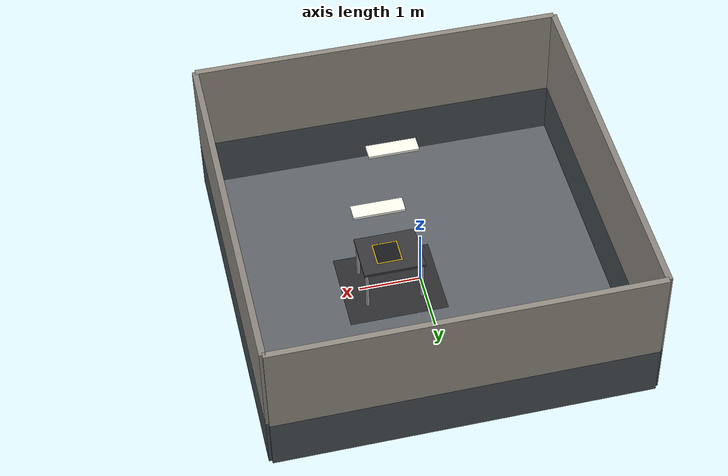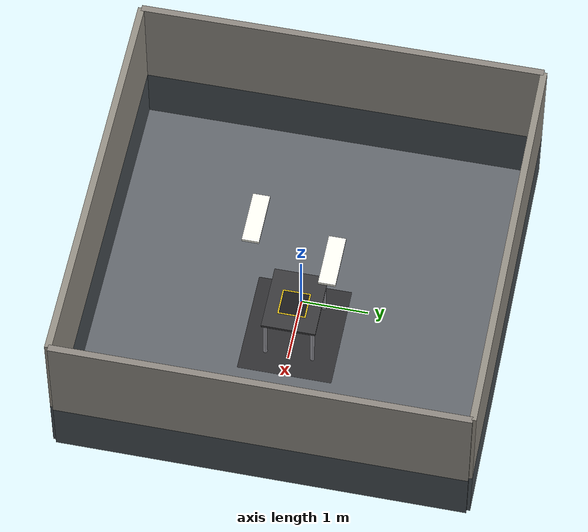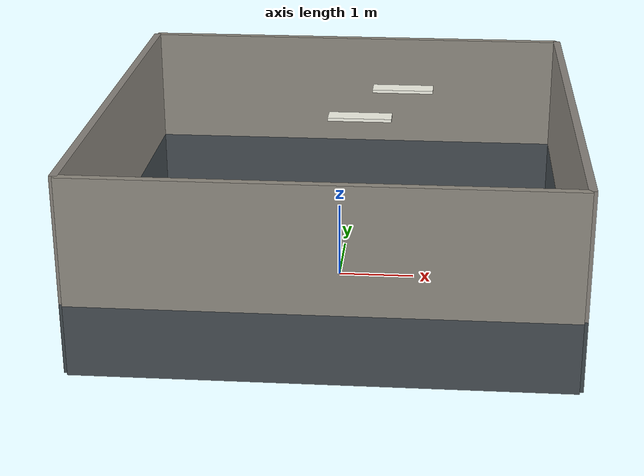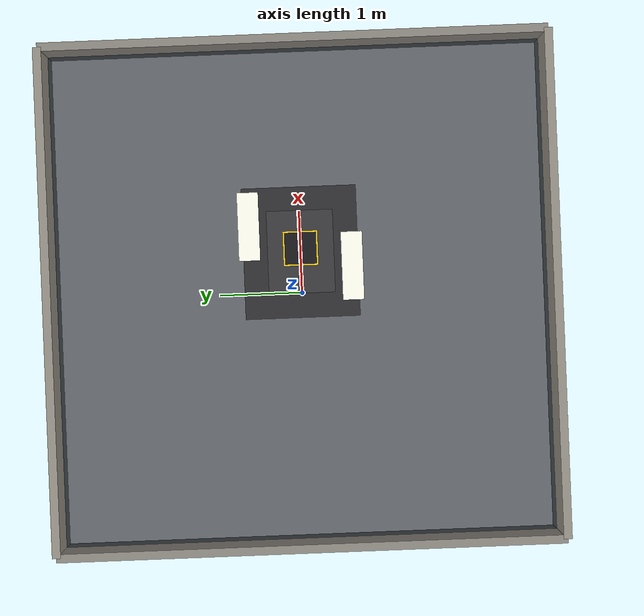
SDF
<sdf version="1.9">
 <world name="lab_world_plant1">
  <plugin filename="gz-sim-physics-system" name="gz::sim::systems::Physics"/>
  <plugin filename="gz-sim-user-commands-system" name="gz::sim::systems::UserCommands"/>
  <plugin filename="gz-sim-scene-broadcaster-system" name="gz::sim::systems::SceneBroadcaster"/>
  <plugin filename="gz-sim-sensors-system" name="gz::sim::systems::Sensors">
   <render_engine>ogre2</render_engine>
  </plugin>
  <plugin filename="gz-sim-contact-system" name="gz::sim::systems::Contact"/>
  <scene>
   <ambient>0.36 0.36 0.38 1</ambient>
   <background>0.4 0.4 0.44 1</background>
   <shadows>true</shadows>
  </scene>
  <gravity>0 0 -9.8</gravity>
  <model name="lab_floor">
   <static>true</static>
   <link name="link">
    <collision name="collision">
     <geometry><plane><normal>0 0 1</normal><size>6 6</size></plane></geometry>
    </collision>
    <visual name="visual">
     <geometry><plane><normal>0 0 1</normal><size>6 6</size></plane></geometry>
     <material>
      <ambient>0.32 0.34 0.36 1</ambient>
      <diffuse>0.38 0.4 0.42 1</diffuse>
      <specular>0.05 0.05 0.05 1</specular>
     </material>
    </visual>
   </link>
  </model>
  <model name="floor_mat">
   <static>true</static>
   <pose>0.5 0 0.001 0 0 0</pose>
   <link name="link">
    <visual name="visual">
     <geometry><box><size>1.6 1.4 0.002</size></box></geometry>
     <material><ambient>0.15 0.15 0.16 1</ambient><diffuse>0.18 0.18 0.19 1</diffuse></material>
    </visual>
   </link>
  </model>
  <model name="wall_north_lower">
   <static>true</static>
   <pose>0 3 0.45 0 0 0</pose>
   <link name="link">
    <collision name="collision"><geometry><box><size>6 0.1 0.9</size></box></geometry></collision>
    <visual name="visual">
     <geometry><box><size>6 0.1 0.9</size></box></geometry>
     <material><ambient>0.22 0.25 0.27 1</ambient><diffuse>0.28 0.31 0.33 1</diffuse></material>
    </visual>
   </link>
  </model>
  <model name="wall_north_upper">
   <static>true</static>
   <pose>0 3 1.7 0 0 0</pose>
   <link name="link">
    <collision name="collision"><geometry><box><size>6 0.1 1.6</size></box></geometry></collision>
    <visual name="visual">
     <geometry><box><size>6 0.1 1.6</size></box></geometry>
     <material><ambient>0.5 0.48 0.44 1</ambient><diffuse>0.58 0.56 0.52 1</diffuse></material>
    </visual>
   </link>
  </model>
  <model name="wall_south_lower">
   <static>true</static>
   <pose>0 -3 0.45 0 0 0</pose>
   <link name="link">
    <collision name="collision"><geometry><box><size>6 0.1 0.9</size></box></geometry></collision>
    <visual name="visual">
     <geometry><box><size>6 0.1 0.9</size></box></geometry>
     <material><ambient>0.22 0.25 0.27 1</ambient><diffuse>0.28 0.31 0.33 1</diffuse></material>
    </visual>
   </link>
  </model>
  <model name="wall_south_upper">
   <static>true</static>
   <pose>0 -3 1.7 0 0 0</pose>
   <link name="link">
    <collision name="collision"><geometry><box><size>6 0.1 1.6</size></box></geometry></collision>
    <visual name="visual">
     <geometry><box><size>6 0.1 1.6</size></box></geometry>
     <material><ambient>0.5 0.48 0.44 1</ambient><diffuse>0.58 0.56 0.52 1</diffuse></material>
    </visual>
   </link>
  </model>
  <model name="wall_east_lower">
   <static>true</static>
   <pose>3 0 0.45 0 0 1.5708</pose>
   <link name="link">
    <collision name="collision"><geometry><box><size>6 0.1 0.9</size></box></geometry></collision>
    <visual name="visual">
     <geometry><box><size>6 0.1 0.9</size></box></geometry>
     <material><ambient>0.2 0.23 0.25 1</ambient><diffuse>0.26 0.29 0.31 1</diffuse></material>
    </visual>
   </link>
  </model>
  <model name="wall_east_upper">
   <static>true</static>
   <pose>3 0 1.7 0 0 1.5708</pose>
   <link name="link">
    <collision name="collision"><geometry><box><size>6 0.1 1.6</size></box></geometry></collision>
    <visual name="visual">
     <geometry><box><size>6 0.1 1.6</size></box></geometry>
     <material><ambient>0.47 0.45 0.42 1</ambient><diffuse>0.55 0.53 0.5 1</diffuse></material>
    </visual>
   </link>
  </model>
  <model name="wall_west_lower">
   <static>true</static>
   <pose>-3 0 0.45 0 0 1.5708</pose>
   <link name="link">
    <collision name="collision"><geometry><box><size>6 0.1 0.9</size></box></geometry></collision>
    <visual name="visual">
     <geometry><box><size>6 0.1 0.9</size></box></geometry>
     <material><ambient>0.2 0.23 0.25 1</ambient><diffuse>0.26 0.29 0.31 1</diffuse></material>
    </visual>
   </link>
  </model>
  <model name="wall_west_upper">
   <static>true</static>
   <pose>-3 0 1.7 0 0 1.5708</pose>
   <link name="link">
    <collision name="collision"><geometry><box><size>6 0.1 1.6</size></box></geometry></collision>
    <visual name="visual">
     <geometry><box><size>6 0.1 1.6</size></box></geometry>
     <material><ambient>0.47 0.45 0.42 1</ambient><diffuse>0.55 0.53 0.5 1</diffuse></material>
    </visual>
   </link>
  </model>
  <model name="light_fixture_1">
   <static>true</static>
   <pose>0.3 -0.6 2.47 0 0 0</pose>
   <link name="link">
    <visual name="visual">
     <geometry><box><size>0.8 0.25 0.04</size></box></geometry>
     <material>
      <ambient>1 1 0.95 1</ambient>
      <diffuse>1 1 0.95 1</diffuse>
      <emissive>0.35 0.35 0.32 1</emissive>
     </material>
    </visual>
   </link>
  </model>
  <model name="light_fixture_2">
   <static>true</static>
   <pose>0.8 0.6 2.47 0 0 0</pose>
   <link name="link">
    <visual name="visual">
     <geometry><box><size>0.8 0.25 0.04</size></box></geometry>
     <material>
      <ambient>1 1 0.95 1</ambient>
      <diffuse>1 1 0.95 1</diffuse>
      <emissive>0.35 0.35 0.32 1</emissive>
     </material>
    </visual>
   </link>
  </model>
  <light name="scan_light_N" type="point">
   <pose>0.54 0.45 2.1 0 0 0</pose>
   <diffuse>0.6 0.6 0.56 1</diffuse>
   <specular>0.02 0.02 0.02 1</specular>
   <attenuation>
    <range>14</range>
    <constant>0.4</constant>
    <linear>0.05</linear>
    <quadratic>0.01</quadratic>
   </attenuation>
  </light>
  <light name="scan_light_S" type="point">
   <pose>0.54 -0.45 2.1 0 0 0</pose>
   <diffuse>0.6 0.6 0.56 1</diffuse>
   <specular>0.02 0.02 0.02 1</specular>
   <attenuation>
    <range>14</range>
    <constant>0.4</constant>
    <linear>0.05</linear>
    <quadratic>0.01</quadratic>
   </attenuation>
  </light>
  <light name="scan_light_E" type="point">
   <pose>0.84 0 2.1 0 0 0</pose>
   <diffuse>0.55 0.55 0.52 1</diffuse>
   <specular>0.02 0.02 0.02 1</specular>
   <attenuation>
    <range>14</range>
    <constant>0.4</constant>
    <linear>0.05</linear>
    <quadratic>0.01</quadratic>
   </attenuation>
  </light>
  <light name="scan_light_W" type="point">
   <pose>0.24 0 2.1 0 0 0</pose>
   <diffuse>0.55 0.55 0.52 1</diffuse>
   <specular>0.02 0.02 0.02 1</specular>
   <attenuation>
    <range>14</range>
    <constant>0.4</constant>
    <linear>0.05</linear>
    <quadratic>0.01</quadratic>
   </attenuation>
  </light>
  <light name="fill_light_a" type="directional">
   <pose>0 0 5 0 0 0</pose>
   <diffuse>0.18 0.18 0.18 1</diffuse>
   <specular>0.0 0.0 0.0 1</specular>
   <direction>-0.3 0.3 -0.9</direction>
   <cast_shadows>false</cast_shadows>
  </light>
  <light name="fill_light_b" type="directional">
   <pose>0 0 5 0 0 0</pose>
   <diffuse>0.18 0.18 0.18 1</diffuse>
   <specular>0.0 0.0 0.0 1</specular>
   <direction>0.3 -0.3 -0.9</direction>
   <cast_shadows>false</cast_shadows>
  </light>
  <model name="lab_table">
   <static>true</static>
   <pose>0.5 0 0 0 0 0</pose>
   <link name="tabletop">
    <collision name="top_collision">
     <pose>0 0 0.75 0 0 0</pose>
     <geometry><box><size>1.0 0.8 0.04</size></box></geometry>
    </collision>
    <visual name="top_visual">
     <pose>0 0 0.75 0 0 0</pose>
     <geometry><box><size>1.0 0.8 0.04</size></box></geometry>
     <material>
      <ambient>0.16 0.16 0.17 1</ambient>
      <diffuse>0.22 0.22 0.23 1</diffuse>
      <specular>0.06 0.06 0.06 1</specular>
     </material>
    </visual>
    <collision name="leg_fl_collision">
     <pose>0.45 0.35 0.365 0 0 0</pose>
     <geometry><cylinder><radius>0.03</radius><length>0.73</length></cylinder></geometry>
    </collision>
    <visual name="leg_fl_visual">
     <pose>0.45 0.35 0.365 0 0 0</pose>
     <geometry><cylinder><radius>0.03</radius><length>0.73</length></cylinder></geometry>
     <material>
      <ambient>0.5 0.5 0.53 1</ambient>
      <diffuse>0.6 0.6 0.63 1</diffuse>
      <specular>0.08 0.08 0.08 1</specular>
     </material>
    </visual>
    <collision name="leg_fr_collision">
     <pose>0.45 -0.35 0.365 0 0 0</pose>
     <geometry><cylinder><radius>0.03</radius><length>0.73</length></cylinder></geometry>
    </collision>
    <visual name="leg_fr_visual">
     <pose>0.45 -0.35 0.365 0 0 0</pose>
     <geometry><cylinder><radius>0.03</radius><length>0.73</length></cylinder></geometry>
     <material>
      <ambient>0.5 0.5 0.53 1</ambient>
      <diffuse>0.6 0.6 0.63 1</diffuse>
      <specular>0.08 0.08 0.08 1</specular>
     </material>
    </visual>
    <collision name="leg_bl_collision">
     <pose>-0.45 0.35 0.365 0 0 0</pose>
     <geometry><cylinder><radius>0.03</radius><length>0.73</length></cylinder></geometry>
    </collision>
    <visual name="leg_bl_visual">
     <pose>-0.45 0.35 0.365 0 0 0</pose>
     <geometry><cylinder><radius>0.03</radius><length>0.73</length></cylinder></geometry>
     <material>
      <ambient>0.5 0.5 0.53 1</ambient>
      <diffuse>0.6 0.6 0.63 1</diffuse>
      <specular>0.08 0.08 0.08 1</specular>
     </material>
    </visual>
    <collision name="leg_br_collision">
     <pose>-0.45 -0.35 0.365 0 0 0</pose>
     <geometry><cylinder><radius>0.03</radius><length>0.73</length></cylinder></geometry>
    </collision>
    <visual name="leg_br_visual">
     <pose>-0.45 -0.35 0.365 0 0 0</pose>
     <geometry><cylinder><radius>0.03</radius><length>0.73</length></cylinder></geometry>
     <material>
      <ambient>0.5 0.5 0.53 1</ambient>
      <diffuse>0.6 0.6 0.63 1</diffuse>
      <specular>0.08 0.08 0.08 1</specular>
     </material>
    </visual>
   </link>
  </model>
  <model name="detection_zone_border">
   <static>true</static>
   <pose>0.54 0 0.7705 0 0 0</pose>
   <link name="link">
    <visual name="visual">
     <geometry><box><size>0.42 0.42 0.001</size></box></geometry>
     <material><ambient>0.9 0.75 0.05 1</ambient><diffuse>0.95 0.8 0.1 1</diffuse></material>
    </visual>
   </link>
  </model>
  <model name="detection_zone_fill">
   <static>true</static>
   <pose>0.54 0 0.7715 0 0 0</pose>
   <link name="link">
    <visual name="visual">
     <geometry><box><size>0.38 0.38 0.001</size></box></geometry>
     <material><ambient>0.08 0.08 0.09 1</ambient><diffuse>0.1 0.1 0.11 1</diffuse></material>
    </visual>
   </link>
  </model>
 </world>
</sdf>
